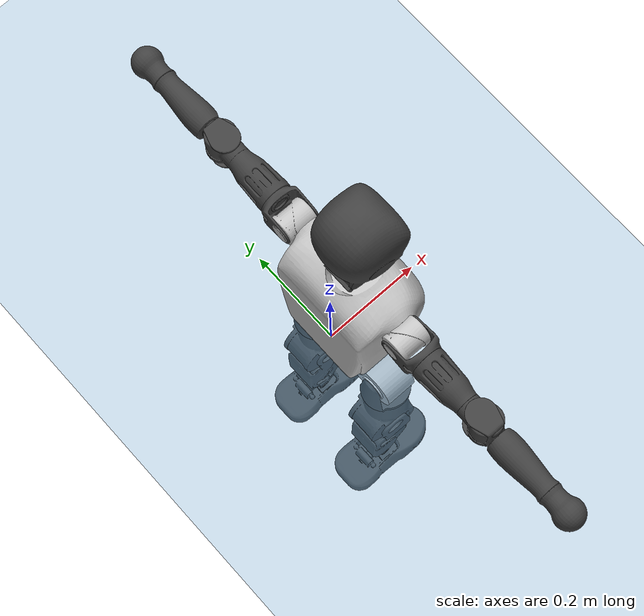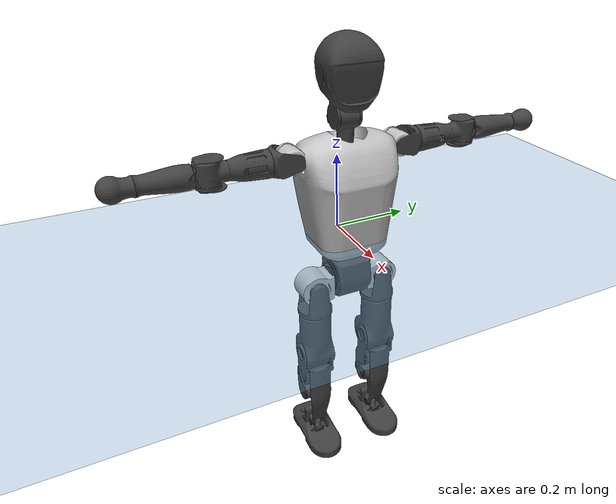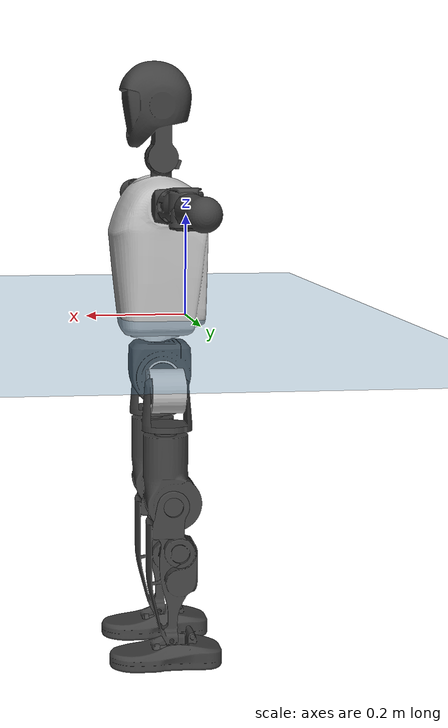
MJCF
<mujoco model="T1">
  <compiler angle="radian" assetdir="assets" balanceinertia="true" inertiafromgeom="false"/>

  <option timestep="0.005" density="1.2" viscosity="2e-05"/>

  <size nkey="1"/>

  <visual>
    <quality shadowsize="8192"/>
    <map shadowclip="0.5"/>
  </visual>

  <default>
    <default class="/">
      <joint armature="0.01" damping="0.01" frictionloss="0.1"/>
      <geom contype="0" conaffinity="0" group="1" solref="-1000 -80"/>
      <site size="0.01 0.005 0.005" group="5"/>
      <general forcelimited="true" biastype="affine" gainprm="25" biasprm="0 -25 -0.6"/>
      <default class="t1">
        <geom rgba="0.25 0.25 0.25 1"/>
        <default class="visual">
          <geom type="mesh" group="2"/>
        </default>
        <default class="collision">
          <geom group="3"/>
        </default>
        <default class="foot">
          <geom size="0.1115 0.05 0.015" type="box" condim="6" group="4" priority="1" solimp="0.015 1 0.015"/>
        </default>
        <default class="reward_collision_sphere">
          <geom group="5" rgba="1 0 0 1"/>
        </default>
      </default>
    </default>
  </default>

  <asset>
    <texture type="skybox" colorspace="auto" name="//unnamed_texture_0" builtin="gradient" rgb1="0.95 0.95 0.95" rgb2="0.95 0.95 0.95" width="100" height="600"/>
    <texture type="2d" colorspace="auto" name="texplane" builtin="checker" rgb1="0.345 0.575 0.748" rgb2="0.345 0.575 0.748" markrgb="1 1 1" width="512" height="512"/>
    <material name="MatPlane" class="/" texture="texplane" texuniform="true" texrepeat="2 2" specular="0.9"/>
    <mesh name="Trunk" class="/" file="Trunk.stl"/>
    <mesh name="H1" class="/" file="H1.stl"/>
    <mesh name="H2" class="/" file="H2.stl"/>
    <mesh name="AL1" class="/" file="AL1.stl"/>
    <mesh name="AL2" class="/" file="AL2.stl"/>
    <mesh name="AL3" class="/" file="AL3.stl"/>
    <mesh name="left_hand_link" class="/" file="left_hand_link.stl"/>
    <mesh name="AR1" class="/" file="AR1.stl"/>
    <mesh name="AR2" class="/" file="AR2.stl"/>
    <mesh name="AR3" class="/" file="AR3.stl"/>
    <mesh name="right_hand_link" class="/" file="right_hand_link.stl"/>
    <mesh name="Waist" class="/" file="Waist.stl"/>
    <mesh name="Hip_Pitch_Left" class="/" file="Hip_Pitch_Left.stl"/>
    <mesh name="Hip_Roll_Left" class="/" file="Hip_Roll_Left.stl"/>
    <mesh name="Hip_Yaw_Left" class="/" file="Hip_Yaw_Left.stl"/>
    <mesh name="Shank_Left" class="/" file="Shank_Left.stl"/>
    <mesh name="Ankle_Cross_Left" class="/" file="Ankle_Cross_Left.stl"/>
    <mesh name="left_foot_link" class="/" file="left_foot_link.stl"/>
    <mesh name="Hip_Pitch_Right" class="/" file="Hip_Pitch_Right.stl"/>
    <mesh name="Hip_Roll_Right" class="/" file="Hip_Roll_Right.stl"/>
    <mesh name="Hip_Yaw_Right" class="/" file="Hip_Yaw_Right.stl"/>
    <mesh name="Shank_Right" class="/" file="Shank_Right.stl"/>
    <mesh name="Ankle_Cross_Right" class="/" file="Ankle_Cross_Right.stl"/>
    <mesh name="right_foot_link" class="/" file="right_foot_link.stl"/>
  </asset>

  <worldbody>
    <geom name="floor" class="/" size="100 100 0.125" type="plane" group="0" material="MatPlane"/>
    <light name="toplight_shadow" class="/" pos="0 0 5" dir="0.0990148 0.0990148 -0.990148" type="directional" ambient="0.04 0.04 0.04" diffuse="0.55 0.55 0.55" specular="0.12 0.12 0.12"/>
    <light name="toplight_fill" class="/" pos="0 0 5" dir="0.0990148 0.0990148 -0.990148" type="directional" castshadow="false" ambient="0.04 0.04 0.04" diffuse="0.3 0.3 0.3" specular="0.08 0.08 0.08"/>
    <body name="trunk" childclass="t1" pos="-0.000549419 0.000179212 0.00025865" quat="1 -9.261e-05 -0.00010493 -0.000112134">
      <inertial pos="0.0460995 -0.000678014 0.10987" quat="0.999949 -0.00152921 -0.00964404 -0.00268743" mass="9.43013" diaginertia="0.0394211 0.047929 0.0674035"/>
      <joint name="//unnamed_joint_0" type="free" armature="0" damping="0" frictionloss="0"/>
      <geom name="//unnamed_geom_1" class="visual" rgba="0.76 0.76 0.76 1" mesh="Trunk"/>
      <geom name="//unnamed_geom_2" class="collision" size="0.0697541 0.0930055 0.139508" pos="0.0506437 0 0.124368" type="box"/>
      <geom name="//unnamed_geom_3" class="reward_collision_sphere" size="0.106956" pos="0.0506437 0 0.10364"/>
      <geom name="//unnamed_geom_4" class="reward_collision_sphere" size="0.0139508" pos="0.0506437 0.0773249 0"/>
      <geom name="//unnamed_geom_5" class="reward_collision_sphere" size="0.0139508" pos="0.0506437 -0.0773249 0"/>
      <geom name="//unnamed_geom_6" class="reward_collision_sphere" size="0.0139508" pos="0.0506437 0.0973383 0.186552"/>
      <geom name="//unnamed_geom_7" class="reward_collision_sphere" size="0.0139508" pos="0.0506437 -0.0973383 0.186552"/>
      <site name="imu" pos="-0.0058457 0.00465551 -0.00107736" size="0.00930055"/>
      <camera name="track" pos="0 -1.81941 0" quat="0.707107 0.707107 0 0" mode="trackcom"/>
      <camera name="ego_camera" pos="0.102975 0 0.435288" quat="-0.5 -0.5 0.5 0.5"/>
      <body name="H1" pos="0.050444 -0.00163467 0.249916" quat="1 -0.000132827 -0.000135176 5.75429e-05">
        <inertial pos="-0.000651028 -0.00103576 0.0604959" quat="0.762225 -0.0103775 -0.00313015 0.647222" mass="0.359207" diaginertia="0.000103516 0.0001372 0.00018029"/>
        <joint name="AAHead_yaw" pos="0 0 0" axis="0.0010051 -0.00506377 0.999987" stiffness="3.68846e-06" range="-1.56708 1.55853" armature="0.00960585" damping="0.0115797" frictionloss="0.0888549"/>
        <geom name="//unnamed_geom_8" class="visual" mesh="H1"/>
        <body name="H2" pos="-0.000484807 5.15067e-05 0.0638415" quat="1 4.80168e-05 5.63717e-06 2.06713e-05">
          <inertial pos="0.00581266 -0.000810387 0.102369" quat="0.988417 0.106917 -0.0739723 -0.078284" mass="0.511301" diaginertia="0.000885311 0.00120176 0.00204602"/>
          <joint name="Head_pitch" pos="0 0 0" axis="7.43483e-05 -1 1.43063e-05" range="-1.22583 0.347411" armature="0.0090801" damping="0.00623242" frictionloss="0.0922651"/>
          <geom name="//unnamed_geom_9" class="visual" mesh="H2"/>
          <geom name="//unnamed_geom_10" class="collision" size="0.0744044" pos="0.00844061 0 0.114004"/>
          <geom name="//unnamed_geom_11" class="reward_collision_sphere" size="0.0837049" pos="0.0168812 0 0.10364"/>
        </body>
      </body>
      <body name="AL1" pos="0.0484064 0.0988362 0.226222" quat="1 3.58105e-06 0.000481836 1.88935e-05">
        <inertial pos="-0.00211682 0.0418207 -0.000112983" quat="0.504291 0.495534 -0.504706 0.495388" mass="0.416635" diaginertia="0.00057362 0.000788351 0.000347488"/>
        <joint name="Left_Shoulder_Pitch" pos="0 0 0" axis="-0.00404826 0.99999 0.00163753" range="-3.32753 1.22017" armature="0.00903839" damping="0.00793222" frictionloss="0.0949324"/>
        <geom name="//unnamed_geom_12" class="visual" rgba="0.76 0.76 0.76 1" mesh="AL1"/>
        <body name="AL2" pos="0.000945283 0.0443601 -0.000618236" quat="1 0.000273016 0.000236445 0.000230191">
          <inertial pos="0.0031995 0.0346119 -0.0012386" quat="0.488078 0.511876 -0.487907 0.511575" mass="0.130349" diaginertia="0.000174223 0.000222205 0.000215856"/>
          <joint name="Left_Shoulder_Roll" pos="0 0 0" axis="-0.999999 0.00120634 -0.000489667" range="-1.58291 1.72696" armature="0.0092919" damping="0.0134985" frictionloss="0.0907636"/>
          <geom name="//unnamed_geom_13" class="visual" mesh="AL2"/>
          <body name="AL3" pos="0.00208446 0.0556322 0.00118679" quat="1 -7.40231e-05 1.69539e-05 -0.000280129">
            <inertial pos="-0.000627331 0.0777072 -0.000147635" quat="0.705969 0.708243 0.0004503 -3.43743e-05" mass="0.812905" diaginertia="0.0055147 0.00793024 0.000740307"/>
            <joint name="Left_Elbow_Pitch" pos="0 0 0" axis="-0.00265868 -0.999995 -0.00142452" stiffness="0.00131249" range="-2.28008 2.27585" armature="0.0090931" damping="0.0121866" frictionloss="0.0944578"/>
            <geom name="//unnamed_geom_14" class="visual" mesh="AL3"/>
            <geom name="//unnamed_geom_15" class="collision" size="0.0279016 0.0697541" pos="0 0.0454852 0" quat="0.707105 0.707108 0 0" type="cylinder"/>
            <geom name="//unnamed_geom_16" class="reward_collision_sphere" size="0.033482"/>
            <body name="left_hand_link" pos="-0.000688998 0.134213 0.00108643" quat="1 -6.93454e-07 3.33378e-06 -1.27334e-05">
              <inertial pos="0.00157893 0.0993697 -0.000100658" quat="0.705628 0.708579 0.00217502 -0.000207078" mass="0.263325" diaginertia="0.00348217 0.00503936 0.000252527"/>
              <joint name="Left_Elbow_Yaw" pos="0 0 0" axis="0.00140657 -0.0058093 0.999982" range="-2.4647 0.0175701" armature="0.00928752" damping="0.00965965" frictionloss="0.093427"/>
              <geom name="//unnamed_geom_17" class="visual" mesh="left_hand_link"/>
              <geom name="//unnamed_geom_18" class="collision" size="0.0279016 0.0813798" pos="0 0.118262 0" quat="0.707105 0.707108 0 0" type="cylinder"/>
              <geom name="//unnamed_geom_19" class="reward_collision_sphere" size="0.0465027"/>
              <geom name="//unnamed_geom_20" class="reward_collision_sphere" size="0.0325519" pos="0 0.100067 0"/>
              <geom name="//unnamed_geom_21" class="reward_collision_sphere" size="0.0325519" pos="0 0.195586 0"/>
            </body>
          </body>
        </body>
      </body>
      <body name="AR1" pos="0.0486618 -0.0964723 0.227085" quat="1 -0.000168748 0.000207578 -0.000163559">
        <inertial pos="-0.00195446 -0.0414648 1.15182e-05" quat="0.504328 0.495722 -0.504221 0.495655" mass="0.424362" diaginertia="0.000590301 0.000803005 0.000350747"/>
        <joint name="Right_Shoulder_Pitch" pos="0 0 0" axis="-0.000304007 -1 -5.8943e-05" stiffness="0.000854739" range="-1.22606 3.29897" armature="0.00909841" damping="0.000865889" frictionloss="0.0967948"/>
        <geom name="//unnamed_geom_22" class="visual" rgba="0.76 0.76 0.76 1" mesh="AR1"/>
        <body name="AR2" pos="-0.000311086 -0.0432624 -0.000792139" quat="1 7.03093e-05 -2.10156e-05 -0.000112483">
          <inertial pos="0.00397481 -0.0345343 -0.000811563" quat="0.51293 0.487607 -0.511862 0.48697" mass="0.127616" diaginertia="0.000170753 0.000210247 0.000207471"/>
          <joint name="Right_Shoulder_Roll" pos="0 0 0" axis="-0.999991 -0.00030415 0.00415044" range="-1.7096 1.56125" armature="0.00889486" damping="0.0138947" frictionloss="0.0939381"/>
          <geom name="//unnamed_geom_23" class="visual" mesh="AR2"/>
          <body name="AR3" pos="-0.00057105 -0.0558984 -0.000859243" quat="1 2.75443e-05 1.48156e-05 3.2038e-05">
            <inertial pos="-0.00149953 -0.0783989 0.00030977" quat="0.71013 0.704064 -0.00309779 -0.000293382" mass="0.823084" diaginertia="0.00550126 0.0080038 0.000755768"/>
            <joint name="Right_Elbow_Pitch" pos="0 0 0" axis="-0.000406764 0.999986 0.00519058" range="-2.27028 2.2802" armature="0.00918684" damping="0.0107927" frictionloss="0.0878798"/>
            <geom name="//unnamed_geom_24" class="visual" mesh="AR3"/>
            <geom name="//unnamed_geom_25" class="collision" size="0.0279016 0.0697541" pos="0 -0.0454852 0" quat="0.707105 0.707108 0 0" type="cylinder"/>
            <geom name="//unnamed_geom_26" class="reward_collision_sphere" size="0.033482"/>
            <body name="right_hand_link" pos="-0.00113569 -0.134464 -0.00016592" quat="1 1.8754e-05 -3.63481e-05 3.09029e-06">
              <inertial pos="-0.000478936 -0.0999699 0.0015902" quat="0.706225 0.707987 0.000125435 0.000312455" mass="0.262129" diaginertia="0.00347785 0.00498515 0.000258424"/>
              <joint name="Right_Elbow_Yaw" pos="0 0 0" axis="0.00432348 -0.00149754 0.99999" range="-0.0179047 2.45085" armature="0.00943083" damping="0.0130858" frictionloss="0.0889853"/>
              <geom name="//unnamed_geom_27" class="visual" mesh="right_hand_link"/>
              <geom name="//unnamed_geom_28" class="collision" size="0.0279016 0.0813798" pos="0 -0.118262 0" quat="0.707105 0.707108 0 0" type="cylinder"/>
              <geom name="//unnamed_geom_29" class="reward_collision_sphere" size="0.0465027"/>
              <geom name="//unnamed_geom_30" class="reward_collision_sphere" size="0.0325519" pos="0 -0.100067 0"/>
              <geom name="//unnamed_geom_31" class="reward_collision_sphere" size="0.0325519" pos="0 -0.195586 0"/>
            </body>
          </body>
        </body>
      </body>
      <body name="Waist" pos="0.0534077 -0.000354558 -0.119911" quat="1 1.30856e-05 2.29487e-05 9.0825e-06">
        <inertial pos="0.00149062 -0.000575603 0.0078219" quat="0.983878 0.00427771 -0.178755 0.00363062" mass="2.0895" diaginertia="0.0023515 0.00331359 0.00580168"/>
        <joint name="Waist" pos="0 0 0" axis="-0.000247585 -0.000236137 1" range="-1.55668 1.58702" armature="0.00936093" damping="0.0128623" frictionloss="0.0891494"/>
        <geom name="//unnamed_geom_32" class="visual" mesh="Waist"/>
        <body name="Hip_Pitch_Left" pos="-0.000716132 0.0965382 0.000600405" quat="1 7.02292e-05 -0.00012763 -5.07353e-05">
          <inertial pos="0.000221099 -0.00714438 -0.0195022" quat="0.974969 0.221666 0.0161711 0.00618332" mass="0.821076" diaginertia="0.000780073 0.000909519 0.00151579"/>
          <joint name="Left_Hip_Pitch" pos="0 0 0" axis="-0.00313894 0.999995 -0.00018934" range="-1.78729 1.57247" armature="0.0091288" damping="0.0123845" frictionloss="0.0927776"/>
          <geom name="//unnamed_geom_33" class="visual" rgba="0.76 0.76 0.76 1" mesh="Hip_Pitch_Left"/>
          <body name="Hip_Roll_Left" pos="0.00123695 0.000816562 -0.0204903" quat="1 -0.000178316 0.000665011 -0.000163623">
            <inertial pos="0.00045839 -5.59897e-05 -0.0556553" quat="0.706463 -0.00657012 -0.00517473 0.7077" mass="0.303763" diaginertia="0.000719473 0.000927423 0.00060823"/>
            <joint name="Left_Hip_Roll" pos="0 0 0" axis="-0.999986 -0.00510853 0.000977865" range="-1.54476 0.191621" armature="0.00965807" damping="0.0104703" frictionloss="0.0971317"/>
            <geom name="//unnamed_geom_34" class="visual" mesh="Hip_Roll_Left"/>
            <geom name="//unnamed_geom_35" class="reward_collision_sphere" size="0.051153"/>
            <body name="Hip_Yaw_Left" pos="4.64689e-05 0.000790686 -0.0862259" quat="1 6.10857e-05 0.000160911 0.000400996">
              <inertial pos="-0.0068535 0.000154458 -0.0919927" quat="0.696548 -0.0344853 -0.031764 0.715977" mass="1.73948" diaginertia="0.0111221 0.0156191 0.00308722"/>
              <joint name="Left_Hip_Yaw" pos="0 0 0" axis="0.00107782 0.000239818 -0.999999" range="-0.977846 1.01932" armature="0.00929168" damping="0.00942972" frictionloss="0.0942389"/>
              <geom name="//unnamed_geom_36" class="visual" mesh="Hip_Yaw_Left"/>
              <geom name="//unnamed_geom_37" class="collision" size="0.0465027 0.0744044" type="cylinder"/>
              <body name="Shank_Left" pos="-0.0108188 0.000430308 -0.138329" quat="1 -3.90607e-08 -1.56229e-08 6.21232e-08">
                <inertial pos="-0.00640389 7.81412e-05 -0.129434" quat="0.997156 -0.00308451 -0.0261253 0.0706241" mass="1.39918" diaginertia="0.0147979 0.021888 0.00220028"/>
                <joint name="Left_Knee_Pitch" pos="0 0 0" axis="-0.00202668 0.999998 -0.000545199" stiffness="0.00217673" range="-0.00591052 2.33771" armature="0.00944829" damping="0.0102673" frictionloss="0.0987097"/>
                <geom name="//unnamed_geom_38" class="visual" mesh="Shank_Left"/>
                <geom name="//unnamed_geom_39" class="collision" size="0.0465027 0.0697541" pos="0 0 -0.124368" type="cylinder"/>
                <geom name="//unnamed_geom_40" class="reward_collision_sphere" size="0.0604536"/>
                <body name="Ankle_Cross_Left" pos="0.000257199 0.000399046 -0.291041" quat="1 -5.10797e-05 -1.88983e-05 -7.83153e-05">
                  <inertial pos="-0.00276707 0.000244435 -0.00871991" quat="0.442156 0.552501 0.551466 0.441731" mass="0.0580924" diaginertia="1.21383e-05 1.58057e-05 1.34478e-05"/>
                  <joint name="Left_Ankle_Pitch" pos="0 0 0" axis="-0.00169674 0.999998 0.000407137" range="-0.866755 0.357959" armature="0.00993947" damping="0.012937" frictionloss="0.0974785"/>
                  <geom name="//unnamed_geom_41" class="visual" mesh="Ankle_Cross_Left"/>
                  <body name="left_foot_link" pos="0.000868753 0.000660972 -0.0115803" quat="1 3.17965e-05 -2.07122e-05 -5.0473e-06">
                    <inertial pos="-0.00132404 -0.000233609 -0.00949174" quat="0.00219747 0.619759 0.00046121 0.784789" mass="0.552095" diaginertia="0.00116651 0.00149273 0.00261491"/>
                    <joint name="Left_Ankle_Roll" pos="0 0 0" axis="-1 -0.000214292 0.000230201" stiffness="0.000876026" range="-0.459555 0.459019" armature="0.00925159" damping="0.00163925" frictionloss="0.09065"/>
                    <geom name="//unnamed_geom_42" class="visual" mesh="left_foot_link"/>
                    <geom name="left_foot" class="foot" size="0.102056 0.0453966 0.014707" pos="0.00844061 0 -0.015546"/>
                    <geom name="//unnamed_geom_44" class="reward_collision_sphere" size="0.0483629" pos="0.00844061 0 -0.015546"/>
                    <geom name="//unnamed_geom_45" class="reward_collision_sphere" size="0.0279016" pos="0.0801858 -0.0209232 -0.015546"/>
                    <geom name="//unnamed_geom_46" class="reward_collision_sphere" size="0.0279016" pos="-0.0590843 -0.0209232 -0.015546"/>
                    <site name="left_foot" class="foot" pos="0.00844061 0 -0.015546" size="0.00930055"/>
                  </body>
                </body>
              </body>
            </body>
          </body>
        </body>
        <body name="Hip_Pitch_Right" pos="0.000236309 -0.096882 0.000787098" quat="1 -0.000161624 0.000189209 -0.000205233">
          <inertial pos="-0.000102374 0.00686231 -0.0189875" quat="0.973769 -0.227117 0.0135561 -0.00292514" mass="0.826064" diaginertia="0.00076047 0.000922147 0.00147491"/>
          <joint name="Right_Hip_Pitch" pos="0 0 0" axis="-0.00170472 -0.999985 -0.00528913" range="-1.60684 1.82514" armature="0.00929793" damping="0.00980554" frictionloss="0.0880243"/>
          <geom name="//unnamed_geom_47" class="visual" rgba="0.76 0.76 0.76 1" mesh="Hip_Pitch_Right"/>
          <body name="Hip_Roll_Right" pos="0.00150128 -1.4071e-05 -0.0210367" quat="1 0.00012921 0.000135738 5.62463e-05">
            <inertial pos="0.00154517 -0.000201973 -0.0554632" quat="0.708227 -0.00618049 -0.00436078 0.705945" mass="0.308945" diaginertia="0.000744545 0.000954125 0.000621252"/>
            <joint name="Right_Hip_Roll" pos="0 0 0" axis="-0.999948 -0.00956442 -0.00339641" stiffness="0.00439055" range="-0.198116 1.57341" armature="0.00962477" damping="0.00939669" frictionloss="0.0941868"/>
            <geom name="//unnamed_geom_48" class="visual" mesh="Hip_Roll_Right"/>
            <geom name="//unnamed_geom_49" class="reward_collision_sphere" size="0.051153"/>
            <body name="Hip_Yaw_Right" pos="-0.000238216 -0.000935352 -0.0855763" quat="1 0.000176814 4.64974e-05 8.12882e-05">
              <inertial pos="-0.0066051 0.000531641 -0.0918528" quat="0.715729 -0.0394932 -0.0342262 0.69642" mass="1.74515" diaginertia="0.0110437 0.0159664 0.00311726"/>
              <joint name="Right_Hip_Yaw" pos="0 0 0" axis="0.00300252 -0.00213448 -0.999993" range="-0.991817 1.00096" armature="0.00913144" damping="0.0112317" frictionloss="0.0926904"/>
              <geom name="//unnamed_geom_50" class="visual" mesh="Hip_Yaw_Right"/>
              <geom name="//unnamed_geom_51" class="collision" size="0.0465027 0.0744044" type="cylinder"/>
              <body name="Shank_Right" pos="-0.0124653 -0.0018554 -0.139329" quat="1 -2.29391e-05 6.3329e-06 5.57044e-06">
                <inertial pos="-0.00665748 0.00163696 -0.126125" quat="0.999243 -0.000833642 -0.0231614 -0.0312404" mass="1.45314" diaginertia="0.0150845 0.0219678 0.0023921"/>
                <joint name="Right_Knee_Pitch" pos="0 0 0" axis="-8.07399e-05 -0.999999 0.00159811" range="-2.3232 -0.00694567" armature="0.00923556" damping="0.0047675" frictionloss="0.0974837"/>
                <geom name="//unnamed_geom_52" class="visual" mesh="Shank_Right"/>
                <geom name="//unnamed_geom_53" class="collision" size="0.0465027 0.0697541" pos="0 0 -0.124368" type="cylinder"/>
                <geom name="//unnamed_geom_54" class="reward_collision_sphere" size="0.0604536"/>
                <body name="Ankle_Cross_Right" pos="-6.69903e-05 -0.00012788 -0.291127" quat="1 3.86508e-05 9.16931e-05 0.000130853">
                  <inertial pos="-0.00276638 4.28958e-05 -0.00856839" quat="0.441564 0.556104 0.548699 0.441246" mass="0.0591481" diaginertia="1.24805e-05 1.55466e-05 1.34857e-05"/>
                  <joint name="Right_Ankle_Pitch" pos="0 0 0" axis="-0.00153676 -0.999999 6.86366e-05" range="-0.370392 0.869419" armature="0.00909274" damping="0.000971467" frictionloss="0.0944613"/>
                  <geom name="//unnamed_geom_55" class="visual" mesh="Ankle_Cross_Right"/>
                  <body name="right_foot_link" pos="-0.0012487 -0.000735142 -0.011574" quat="1 -7.42644e-06 3.90577e-06 -3.33434e-06">
                    <inertial pos="4.94384e-07 -0.000718007 -0.00872136" quat="-0.000894983 0.62212 0.00317365 0.782915" mass="0.549454" diaginertia="0.00116229 0.0014727 0.00261804"/>
                    <joint name="Right_Ankle_Roll" pos="0 0 0" axis="-1 0.000158401 -0.000841582" range="-0.43265 0.451551" armature="0.00904867" damping="0.00485524" frictionloss="0.0954081"/>
                    <geom name="//unnamed_geom_56" class="visual" mesh="right_foot_link"/>
                    <geom name="right_foot" class="foot" size="0.0967311 0.0433847 0.0136376" pos="0.00844061 0 -0.015546"/>
                    <geom name="//unnamed_geom_58" class="reward_collision_sphere" size="0.0372022"/>
                    <geom name="//unnamed_geom_59" class="reward_collision_sphere" size="0.0279016" pos="0.00844061 0 -0.015546"/>
                    <geom name="//unnamed_geom_60" class="reward_collision_sphere" size="0.0279016" pos="0.0801858 0.0209232 -0.015546"/>
                    <geom name="//unnamed_geom_61" class="reward_collision_sphere" size="0.0279016" pos="-0.0590843 0.0209232 -0.015546"/>
                    <site name="right_foot" class="foot" pos="0.00844061 0 -0.015546" size="0.00930055"/>
                  </body>
                </body>
              </body>
            </body>
          </body>
        </body>
      </body>
    </body>
  </worldbody>

  <contact>
    <pair class="/" geom1="floor" geom2="left_foot" name="//unnamed_contact_0"/>
    <pair class="/" geom1="floor" geom2="right_foot" name="//unnamed_contact_1"/>
  </contact>

  <actuator>
    <general name="AAHead_yaw" class="/" joint="AAHead_yaw" forcerange="-6.4231 6.4231" gainprm="22.2837" biasprm="0 -22.2837 -0.544376"/>
    <general name="Head_pitch" class="/" joint="Head_pitch" forcerange="-6.57183 6.57183" gainprm="22.2837" biasprm="0 -22.2837 -0.544376"/>
    <general name="Left_Shoulder_Pitch" class="/" joint="Left_Shoulder_Pitch" forcerange="-16.8367 16.8367" gainprm="22.2837" biasprm="0 -22.2837 -0.544376"/>
    <general name="Left_Shoulder_Roll" class="/" joint="Left_Shoulder_Roll" forcerange="-16.7589 16.7589" gainprm="22.2837" biasprm="0 -22.2837 -0.544376"/>
    <general name="Left_Elbow_Pitch" class="/" joint="Left_Elbow_Pitch" forcerange="-16.702 16.702" gainprm="22.2837" biasprm="0 -22.2837 -0.544376"/>
    <general name="Left_Elbow_Yaw" class="/" joint="Left_Elbow_Yaw" forcerange="-16.3385 16.3385" gainprm="22.2837" biasprm="0 -22.2837 -0.544376"/>
    <general name="Right_Shoulder_Pitch" class="/" joint="Right_Shoulder_Pitch" forcerange="-17.4323 17.4323" gainprm="22.2837" biasprm="0 -22.2837 -0.544376"/>
    <general name="Right_Shoulder_Roll" class="/" joint="Right_Shoulder_Roll" forcerange="-16.7968 16.7968" gainprm="22.2837" biasprm="0 -22.2837 -0.544376"/>
    <general name="Right_Elbow_Pitch" class="/" joint="Right_Elbow_Pitch" forcerange="-16.6859 16.6859" gainprm="22.2837" biasprm="0 -22.2837 -0.544376"/>
    <general name="Right_Elbow_Yaw" class="/" joint="Right_Elbow_Yaw" forcerange="-16.6374 16.6374" gainprm="22.2837" biasprm="0 -22.2837 -0.544376"/>
    <general name="Waist" class="/" joint="Waist" forcerange="-27.5397 27.5397" gainprm="22.2837" biasprm="0 -22.2837 -0.544376"/>
    <general name="Left_Hip_Pitch" class="/" joint="Left_Hip_Pitch" forcerange="-41.6254 41.6254" gainprm="22.2837" biasprm="0 -22.2837 -0.544376"/>
    <general name="Left_Hip_Roll" class="/" joint="Left_Hip_Roll" forcerange="-28.3031 28.3031" gainprm="22.2837" biasprm="0 -22.2837 -0.544376"/>
    <general name="Left_Hip_Yaw" class="/" joint="Left_Hip_Yaw" forcerange="-28.0943 28.0943" gainprm="22.2837" biasprm="0 -22.2837 -0.544376"/>
    <general name="Left_Knee_Pitch" class="/" joint="Left_Knee_Pitch" forcerange="-53.4793 53.4793" gainprm="22.2837" biasprm="0 -22.2837 -0.544376"/>
    <general name="Left_Ankle_Pitch" class="/" joint="Left_Ankle_Pitch" forcerange="-19.2386 19.2386" gainprm="22.2837" biasprm="0 -22.2837 -0.544376"/>
    <general name="Left_Ankle_Roll" class="/" joint="Left_Ankle_Roll" forcerange="-14.0615 14.0615" gainprm="22.2837" biasprm="0 -22.2837 -0.544376"/>
    <general name="Right_Hip_Pitch" class="/" joint="Right_Hip_Pitch" forcerange="-41.5668 41.5668" gainprm="22.2837" biasprm="0 -22.2837 -0.544376"/>
    <general name="Right_Hip_Roll" class="/" joint="Right_Hip_Roll" forcerange="-27.3861 27.3861" gainprm="22.2837" biasprm="0 -22.2837 -0.544376"/>
    <general name="Right_Hip_Yaw" class="/" joint="Right_Hip_Yaw" forcerange="-28.6202 28.6202" gainprm="22.2837" biasprm="0 -22.2837 -0.544376"/>
    <general name="Right_Knee_Pitch" class="/" joint="Right_Knee_Pitch" forcerange="-55.6489 55.6489" gainprm="22.2837" biasprm="0 -22.2837 -0.544376"/>
    <general name="Right_Ankle_Pitch" class="/" joint="Right_Ankle_Pitch" forcerange="-18.1703 18.1703" gainprm="22.2837" biasprm="0 -22.2837 -0.544376"/>
    <general name="Right_Ankle_Roll" class="/" joint="Right_Ankle_Roll" forcerange="-13.6311 13.6311" gainprm="22.2837" biasprm="0 -22.2837 -0.544376"/>
  </actuator>

  <sensor>
    <gyro site="imu" name="imu_angular_velocity"/>
    <velocimeter site="imu" name="imu_linear_velocity"/>
    <framelinvel objtype="site" objname="left_foot" name="left_foot_global_linear_velocity"/>
    <framelinvel objtype="site" objname="right_foot" name="right_foot_global_linear_velocity"/>
  </sensor>

  <keyframe>
    <key name="home" qpos="0 0 0.6385 1 0 0 0 0 0 0 1.4 0 -0.4 0 -1.4 0 0.4 0 -0.4 0 0 0.8 -0.4 0 0.4 0 0 -0.8 0.4 0"/>
  </keyframe>
</mujoco>
